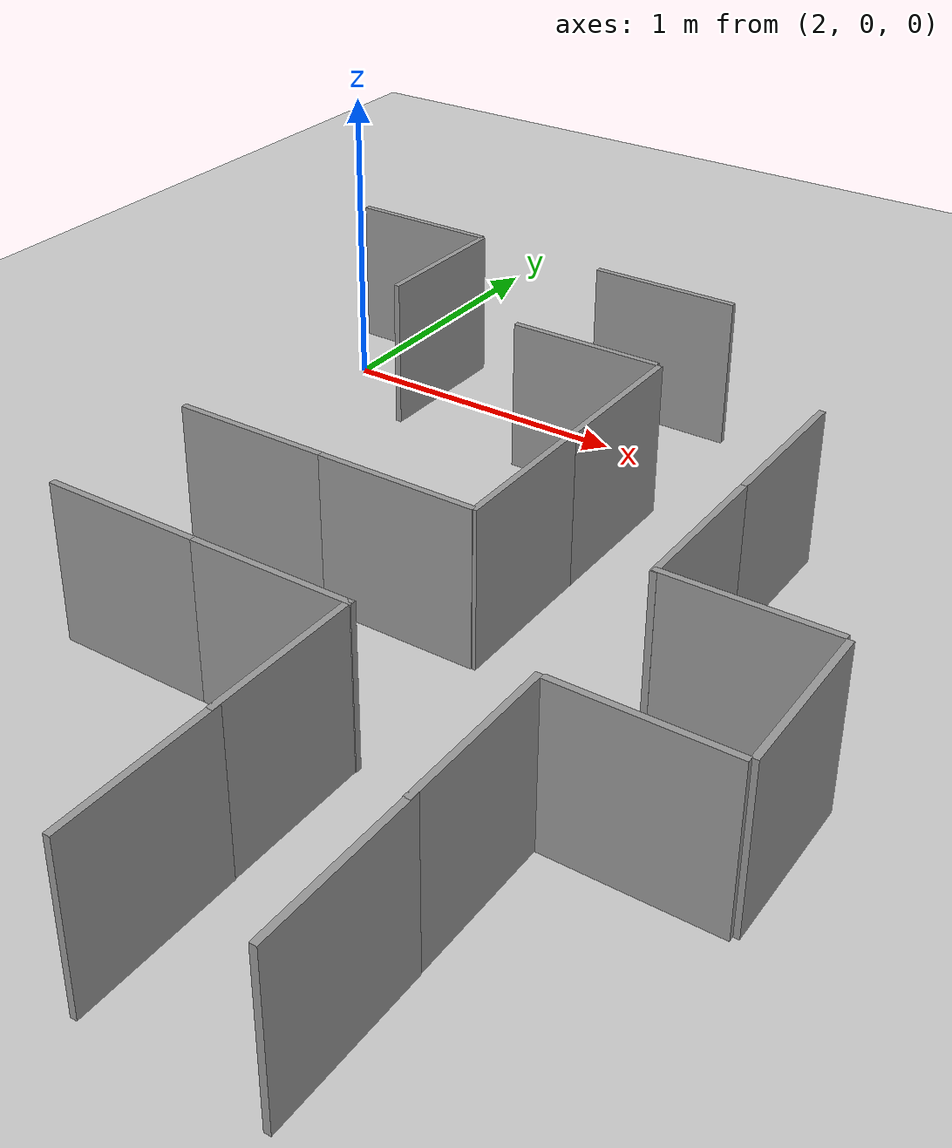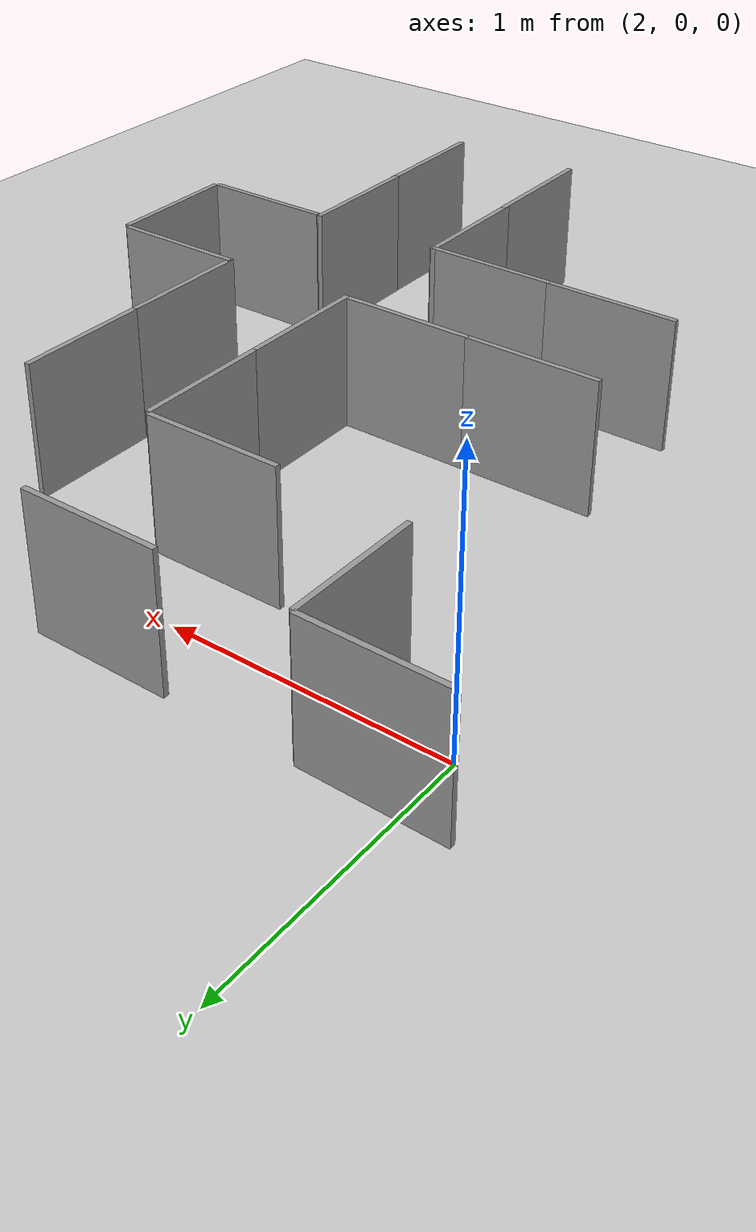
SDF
<sdf version="1.7">
 <world name="default">
  <model name="ground_plane">
   <static>1</static>
   <link name="link">
    <collision name="collision">
     <geometry><plane><normal>0 0 1</normal><size>100 100</size></plane></geometry>
     <surface><friction><ode><mu>100</mu><mu2>50</mu2></ode></friction></surface>
    </collision>
    <visual name="visual">
     <cast_shadows>0</cast_shadows>
     <geometry><plane><normal>0 0 1</normal><size>100 100</size></plane></geometry>
     <material>
      <script><uri>file://media/materials/scripts/gazebo.material</uri><name>Gazebo/Grey</name></script>
     </material>
    </visual>
   </link>
  </model>
  <model name="hsl_module_3">
   <link name="link_2_clone">
    <inertial>
     <mass>1</mass>
     <inertia><ixx>0.01</ixx><ixy>0</ixy><ixz>0</ixz><iyy>0.02</iyy><iyz>0</iyz><izz>0.01</izz></inertia>
    </inertial>
    <pose>0.212503 -0.126383 0 0 -0 0</pose>
    <visual name="visual">
     <geometry><box><size>0.5 0.02 0.5</size></box></geometry>
     <material>
      <lighting>1</lighting>
      <script><uri>file://media/materials/scripts/gazebo.material</uri><name>Gazebo/Grey</name></script>
      <shader type="pixel"><normal_map>__default__</normal_map></shader>
      <ambient>0.3 0.3 0.3 1</ambient>
      <diffuse>0.7 0.7 0.7 1</diffuse>
      <specular>0.01 0.01 0.01 1</specular>
      <emissive>0 0 0 1</emissive>
     </material>
    </visual>
    <collision name="collision">
     <geometry><box><size>0.5 0.02 0.5</size></box></geometry>
     <surface>
      <friction>
       <ode><mu>1</mu><mu2>1</mu2><fdir1>0 0 0</fdir1><slip1>0</slip1><slip2>0</slip2></ode>
       <torsional>
        <coefficient>1</coefficient>
        <patch_radius>0</patch_radius>
        <surface_radius>0</surface_radius>
        <use_patch_radius>1</use_patch_radius>
        <ode><slip>0</slip></ode>
       </torsional>
      </friction>
      <bounce><restitution_coefficient>0</restitution_coefficient><threshold>1e+06</threshold></bounce>
      <contact>
       <collide_without_contact>0</collide_without_contact>
       <collide_without_contact_bitmask>1</collide_without_contact_bitmask>
       <collide_bitmask>1</collide_bitmask>
       <ode>
        <soft_cfm>0</soft_cfm>
        <soft_erp>0.2</soft_erp>
        <kp>1e+13</kp>
        <kd>1</kd>
        <max_vel>0.01</max_vel>
        <min_depth>0</min_depth>
       </ode>
       <bullet>
        <split_impulse>1</split_impulse>
        <split_impulse_penetration_threshold>-0.01</split_impulse_penetration_threshold>
        <soft_cfm>0</soft_cfm>
        <soft_erp>0.2</soft_erp>
        <kp>1e+13</kp>
        <kd>1</kd>
       </bullet>
      </contact>
     </surface>
    </collision>
   </link>
   <link name="link_2_clone_clone">
    <inertial>
     <mass>1</mass>
     <inertia><ixx>0.01</ixx><ixy>0</ixy><ixz>0</ixz><iyy>0.02</iyy><iyz>0</iyz><izz>0.01</izz></inertia>
    </inertial>
    <pose>-0.040799 0.125917 0 0 -0 1.57298</pose>
    <visual name="visual">
     <geometry><box><size>0.5 0.02 0.5</size></box></geometry>
     <material>
      <lighting>1</lighting>
      <script><uri>file://media/materials/scripts/gazebo.material</uri><name>Gazebo/Grey</name></script>
      <shader type="pixel"><normal_map>__default__</normal_map></shader>
      <ambient>0.3 0.3 0.3 1</ambient>
      <diffuse>0.7 0.7 0.7 1</diffuse>
      <specular>0.01 0.01 0.01 1</specular>
      <emissive>0 0 0 1</emissive>
     </material>
    </visual>
    <collision name="collision">
     <geometry><box><size>0.5 0.02 0.5</size></box></geometry>
     <surface>
      <friction>
       <ode><mu>1</mu><mu2>1</mu2><fdir1>0 0 0</fdir1><slip1>0</slip1><slip2>0</slip2></ode>
       <torsional>
        <coefficient>1</coefficient>
        <patch_radius>0</patch_radius>
        <surface_radius>0</surface_radius>
        <use_patch_radius>1</use_patch_radius>
        <ode><slip>0</slip></ode>
       </torsional>
      </friction>
      <bounce><restitution_coefficient>0</restitution_coefficient><threshold>1e+06</threshold></bounce>
      <contact>
       <collide_without_contact>0</collide_without_contact>
       <collide_without_contact_bitmask>1</collide_without_contact_bitmask>
       <collide_bitmask>1</collide_bitmask>
       <ode>
        <soft_cfm>0</soft_cfm>
        <soft_erp>0.2</soft_erp>
        <kp>1e+13</kp>
        <kd>1</kd>
        <max_vel>0.01</max_vel>
        <min_depth>0</min_depth>
       </ode>
       <bullet>
        <split_impulse>1</split_impulse>
        <split_impulse_penetration_threshold>-0.01</split_impulse_penetration_threshold>
        <soft_cfm>0</soft_cfm>
        <soft_erp>0.2</soft_erp>
        <kp>1e+13</kp>
        <kd>1</kd>
       </bullet>
      </contact>
     </surface>
    </collision>
   </link>
   <static>0</static>
   <pose>2.29336 0.124927 0.255067 0 -0 3.13436</pose>
  </model>
  <model name="hsl_module_2_clone_clone_clone_0">
   <link name="link_2_clone">
    <inertial>
     <mass>1</mass>
     <inertia><ixx>0.01</ixx><ixy>0</ixy><ixz>0</ixz><iyy>0.02</iyy><iyz>0</iyz><izz>0.01</izz></inertia>
    </inertial>
    <pose>-0.318213 -0.417987 0.25 0 -0 0</pose>
    <visual name="visual">
     <geometry><box><size>0.5 0.02 0.5</size></box></geometry>
     <material>
      <lighting>1</lighting>
      <script><uri>file://media/materials/scripts/gazebo.material</uri><name>Gazebo/Grey</name></script>
      <shader type="pixel"><normal_map>__default__</normal_map></shader>
      <ambient>0.3 0.3 0.3 1</ambient>
      <diffuse>0.7 0.7 0.7 1</diffuse>
      <specular>0.01 0.01 0.01 1</specular>
      <emissive>0 0 0 1</emissive>
     </material>
    </visual>
    <collision name="collision">
     <geometry><box><size>0.5 0.02 0.5</size></box></geometry>
     <surface>
      <friction>
       <ode><mu>1</mu><mu2>1</mu2><fdir1>0 0 0</fdir1><slip1>0</slip1><slip2>0</slip2></ode>
       <torsional>
        <coefficient>1</coefficient>
        <patch_radius>0</patch_radius>
        <surface_radius>0</surface_radius>
        <use_patch_radius>1</use_patch_radius>
        <ode><slip>0</slip></ode>
       </torsional>
      </friction>
      <bounce><restitution_coefficient>0</restitution_coefficient><threshold>1e+06</threshold></bounce>
      <contact>
       <collide_without_contact>0</collide_without_contact>
       <collide_without_contact_bitmask>1</collide_without_contact_bitmask>
       <collide_bitmask>1</collide_bitmask>
       <ode>
        <soft_cfm>0</soft_cfm>
        <soft_erp>0.2</soft_erp>
        <kp>1e+13</kp>
        <kd>1</kd>
        <max_vel>0.01</max_vel>
        <min_depth>0</min_depth>
       </ode>
       <bullet>
        <split_impulse>1</split_impulse>
        <split_impulse_penetration_threshold>-0.01</split_impulse_penetration_threshold>
        <soft_cfm>0</soft_cfm>
        <soft_erp>0.2</soft_erp>
        <kp>1e+13</kp>
        <kd>1</kd>
       </bullet>
      </contact>
     </surface>
    </collision>
   </link>
   <link name="link_2_clone_clone_0">
    <inertial>
     <mass>1</mass>
     <inertia><ixx>0.01</ixx><ixy>0</ixy><ixz>0</ixz><iyy>0.02</iyy><iyz>0</iyz><izz>0.01</izz></inertia>
    </inertial>
    <pose>-0.324105 0.095839 0.25 0 -0 0</pose>
    <visual name="visual">
     <geometry><box><size>0.5 0.02 0.5</size></box></geometry>
     <material>
      <lighting>1</lighting>
      <script><uri>file://media/materials/scripts/gazebo.material</uri><name>Gazebo/Grey</name></script>
      <shader type="pixel"><normal_map>__default__</normal_map></shader>
      <ambient>0.3 0.3 0.3 1</ambient>
      <diffuse>0.7 0.7 0.7 1</diffuse>
      <specular>0.01 0.01 0.01 1</specular>
      <emissive>0 0 0 1</emissive>
     </material>
    </visual>
    <collision name="collision">
     <geometry><box><size>0.5 0.02 0.5</size></box></geometry>
     <surface>
      <friction>
       <ode><mu>1</mu><mu2>1</mu2><fdir1>0 0 0</fdir1><slip1>0</slip1><slip2>0</slip2></ode>
       <torsional>
        <coefficient>1</coefficient>
        <patch_radius>0</patch_radius>
        <surface_radius>0</surface_radius>
        <use_patch_radius>1</use_patch_radius>
        <ode><slip>0</slip></ode>
       </torsional>
      </friction>
      <bounce><restitution_coefficient>0</restitution_coefficient><threshold>1e+06</threshold></bounce>
      <contact>
       <collide_without_contact>0</collide_without_contact>
       <collide_without_contact_bitmask>1</collide_without_contact_bitmask>
       <collide_bitmask>1</collide_bitmask>
       <ode>
        <soft_cfm>0</soft_cfm>
        <soft_erp>0.2</soft_erp>
        <kp>1e+13</kp>
        <kd>1</kd>
        <max_vel>0.01</max_vel>
        <min_depth>0</min_depth>
       </ode>
       <bullet>
        <split_impulse>1</split_impulse>
        <split_impulse_penetration_threshold>-0.01</split_impulse_penetration_threshold>
        <soft_cfm>0</soft_cfm>
        <soft_erp>0.2</soft_erp>
        <kp>1e+13</kp>
        <kd>1</kd>
       </bullet>
      </contact>
     </surface>
    </collision>
   </link>
   <static>0</static>
   <pose>2.89824 -1.35293 -0 0 -0 0</pose>
  </model>
  <model name="hsl_module_2_clone_clone_0">
   <link name="link_2_clone">
    <inertial>
     <mass>1</mass>
     <inertia><ixx>0.01</ixx><ixy>0</ixy><ixz>0</ixz><iyy>0.02</iyy><iyz>0</iyz><izz>0.01</izz></inertia>
    </inertial>
    <pose>-0.318213 -0.417987 0.25 0 -0 0</pose>
    <visual name="visual">
     <geometry><box><size>0.5 0.02 0.5</size></box></geometry>
     <material>
      <lighting>1</lighting>
      <script><uri>file://media/materials/scripts/gazebo.material</uri><name>Gazebo/Grey</name></script>
      <shader type="pixel"><normal_map>__default__</normal_map></shader>
      <ambient>0.3 0.3 0.3 1</ambient>
      <diffuse>0.7 0.7 0.7 1</diffuse>
      <specular>0.01 0.01 0.01 1</specular>
      <emissive>0 0 0 1</emissive>
     </material>
    </visual>
    <collision name="collision">
     <geometry><box><size>0.5 0.02 0.5</size></box></geometry>
     <surface>
      <friction>
       <ode><mu>1</mu><mu2>1</mu2><fdir1>0 0 0</fdir1><slip1>0</slip1><slip2>0</slip2></ode>
       <torsional>
        <coefficient>1</coefficient>
        <patch_radius>0</patch_radius>
        <surface_radius>0</surface_radius>
        <use_patch_radius>1</use_patch_radius>
        <ode><slip>0</slip></ode>
       </torsional>
      </friction>
      <bounce><restitution_coefficient>0</restitution_coefficient><threshold>1e+06</threshold></bounce>
      <contact>
       <collide_without_contact>0</collide_without_contact>
       <collide_without_contact_bitmask>1</collide_without_contact_bitmask>
       <collide_bitmask>1</collide_bitmask>
       <ode>
        <soft_cfm>0</soft_cfm>
        <soft_erp>0.2</soft_erp>
        <kp>1e+13</kp>
        <kd>1</kd>
        <max_vel>0.01</max_vel>
        <min_depth>0</min_depth>
       </ode>
       <bullet>
        <split_impulse>1</split_impulse>
        <split_impulse_penetration_threshold>-0.01</split_impulse_penetration_threshold>
        <soft_cfm>0</soft_cfm>
        <soft_erp>0.2</soft_erp>
        <kp>1e+13</kp>
        <kd>1</kd>
       </bullet>
      </contact>
     </surface>
    </collision>
   </link>
   <link name="link_2_clone_clone_0">
    <inertial>
     <mass>1</mass>
     <inertia><ixx>0.01</ixx><ixy>0</ixy><ixz>0</ixz><iyy>0.02</iyy><iyz>0</iyz><izz>0.01</izz></inertia>
    </inertial>
    <pose>-0.324105 0.095839 0.25 0 -0 0</pose>
    <visual name="visual">
     <geometry><box><size>0.5 0.02 0.5</size></box></geometry>
     <material>
      <lighting>1</lighting>
      <script><uri>file://media/materials/scripts/gazebo.material</uri><name>Gazebo/Grey</name></script>
      <shader type="pixel"><normal_map>__default__</normal_map></shader>
      <ambient>0.3 0.3 0.3 1</ambient>
      <diffuse>0.7 0.7 0.7 1</diffuse>
      <specular>0.01 0.01 0.01 1</specular>
      <emissive>0 0 0 1</emissive>
     </material>
    </visual>
    <collision name="collision">
     <geometry><box><size>0.5 0.02 0.5</size></box></geometry>
     <surface>
      <friction>
       <ode><mu>1</mu><mu2>1</mu2><fdir1>0 0 0</fdir1><slip1>0</slip1><slip2>0</slip2></ode>
       <torsional>
        <coefficient>1</coefficient>
        <patch_radius>0</patch_radius>
        <surface_radius>0</surface_radius>
        <use_patch_radius>1</use_patch_radius>
        <ode><slip>0</slip></ode>
       </torsional>
      </friction>
      <bounce><restitution_coefficient>0</restitution_coefficient><threshold>1e+06</threshold></bounce>
      <contact>
       <collide_without_contact>0</collide_without_contact>
       <collide_without_contact_bitmask>1</collide_without_contact_bitmask>
       <collide_bitmask>1</collide_bitmask>
       <ode>
        <soft_cfm>0</soft_cfm>
        <soft_erp>0.2</soft_erp>
        <kp>1e+13</kp>
        <kd>1</kd>
        <max_vel>0.01</max_vel>
        <min_depth>0</min_depth>
       </ode>
       <bullet>
        <split_impulse>1</split_impulse>
        <split_impulse_penetration_threshold>-0.01</split_impulse_penetration_threshold>
        <soft_cfm>0</soft_cfm>
        <soft_erp>0.2</soft_erp>
        <kp>1e+13</kp>
        <kd>1</kd>
       </bullet>
      </contact>
     </surface>
    </collision>
   </link>
   <static>0</static>
   <pose>3.38996 -1.35303 0 0 -0 0</pose>
  </model>
  <model name="hsl_module_2_0_clone_clone">
   <link name="link_2_clone">
    <inertial>
     <mass>1</mass>
     <inertia><ixx>0.01</ixx><ixy>0</ixy><ixz>0</ixz><iyy>0.02</iyy><iyz>0</iyz><izz>0.01</izz></inertia>
    </inertial>
    <pose>-0.318213 -0.417987 0.25 0 -0 0</pose>
    <visual name="visual">
     <geometry><box><size>0.5 0.02 0.5</size></box></geometry>
     <material>
      <lighting>1</lighting>
      <script><uri>file://media/materials/scripts/gazebo.material</uri><name>Gazebo/Grey</name></script>
      <shader type="pixel"><normal_map>__default__</normal_map></shader>
      <ambient>0.3 0.3 0.3 1</ambient>
      <diffuse>0.7 0.7 0.7 1</diffuse>
      <specular>0.01 0.01 0.01 1</specular>
      <emissive>0 0 0 1</emissive>
     </material>
    </visual>
    <collision name="collision">
     <geometry><box><size>0.5 0.02 0.5</size></box></geometry>
     <surface>
      <friction>
       <ode><mu>1</mu><mu2>1</mu2><fdir1>0 0 0</fdir1><slip1>0</slip1><slip2>0</slip2></ode>
       <torsional>
        <coefficient>1</coefficient>
        <patch_radius>0</patch_radius>
        <surface_radius>0</surface_radius>
        <use_patch_radius>1</use_patch_radius>
        <ode><slip>0</slip></ode>
       </torsional>
      </friction>
      <bounce><restitution_coefficient>0</restitution_coefficient><threshold>1e+06</threshold></bounce>
      <contact>
       <collide_without_contact>0</collide_without_contact>
       <collide_without_contact_bitmask>1</collide_without_contact_bitmask>
       <collide_bitmask>1</collide_bitmask>
       <ode>
        <soft_cfm>0</soft_cfm>
        <soft_erp>0.2</soft_erp>
        <kp>1e+13</kp>
        <kd>1</kd>
        <max_vel>0.01</max_vel>
        <min_depth>0</min_depth>
       </ode>
       <bullet>
        <split_impulse>1</split_impulse>
        <split_impulse_penetration_threshold>-0.01</split_impulse_penetration_threshold>
        <soft_cfm>0</soft_cfm>
        <soft_erp>0.2</soft_erp>
        <kp>1e+13</kp>
        <kd>1</kd>
       </bullet>
      </contact>
     </surface>
    </collision>
   </link>
   <link name="link_2_clone_clone_0">
    <inertial>
     <mass>1</mass>
     <inertia><ixx>0.01</ixx><ixy>0</ixy><ixz>0</ixz><iyy>0.02</iyy><iyz>0</iyz><izz>0.01</izz></inertia>
    </inertial>
    <pose>-0.324105 0.095839 0.25 0 -0 0</pose>
    <visual name="visual">
     <geometry><box><size>0.5 0.02 0.5</size></box></geometry>
     <material>
      <lighting>1</lighting>
      <script><uri>file://media/materials/scripts/gazebo.material</uri><name>Gazebo/Grey</name></script>
      <shader type="pixel"><normal_map>__default__</normal_map></shader>
      <ambient>0.3 0.3 0.3 1</ambient>
      <diffuse>0.7 0.7 0.7 1</diffuse>
      <specular>0.01 0.01 0.01 1</specular>
      <emissive>0 0 0 1</emissive>
     </material>
    </visual>
    <collision name="collision">
     <geometry><box><size>0.5 0.02 0.5</size></box></geometry>
     <surface>
      <friction>
       <ode><mu>1</mu><mu2>1</mu2><fdir1>0 0 0</fdir1><slip1>0</slip1><slip2>0</slip2></ode>
       <torsional>
        <coefficient>1</coefficient>
        <patch_radius>0</patch_radius>
        <surface_radius>0</surface_radius>
        <use_patch_radius>1</use_patch_radius>
        <ode><slip>0</slip></ode>
       </torsional>
      </friction>
      <bounce><restitution_coefficient>0</restitution_coefficient><threshold>1e+06</threshold></bounce>
      <contact>
       <collide_without_contact>0</collide_without_contact>
       <collide_without_contact_bitmask>1</collide_without_contact_bitmask>
       <collide_bitmask>1</collide_bitmask>
       <ode>
        <soft_cfm>0</soft_cfm>
        <soft_erp>0.2</soft_erp>
        <kp>1e+13</kp>
        <kd>1</kd>
        <max_vel>0.01</max_vel>
        <min_depth>0</min_depth>
       </ode>
       <bullet>
        <split_impulse>1</split_impulse>
        <split_impulse_penetration_threshold>-0.01</split_impulse_penetration_threshold>
        <soft_cfm>0</soft_cfm>
        <soft_erp>0.2</soft_erp>
        <kp>1e+13</kp>
        <kd>1</kd>
       </bullet>
      </contact>
     </surface>
    </collision>
   </link>
   <static>0</static>
   <pose>3.73629 -1.33051 0 0 0 -1.56536</pose>
  </model>
  <model name="hsl_module_2_0_clone_clone_0">
   <link name="link_2_clone">
    <inertial>
     <mass>1</mass>
     <inertia><ixx>0.01</ixx><ixy>0</ixy><ixz>0</ixz><iyy>0.02</iyy><iyz>0</iyz><izz>0.01</izz></inertia>
    </inertial>
    <pose>-0.318213 -0.417987 0.25 0 -0 0</pose>
    <visual name="visual">
     <geometry><box><size>0.5 0.02 0.5</size></box></geometry>
     <material>
      <lighting>1</lighting>
      <script><uri>file://media/materials/scripts/gazebo.material</uri><name>Gazebo/Grey</name></script>
      <shader type="pixel"><normal_map>__default__</normal_map></shader>
      <ambient>0.3 0.3 0.3 1</ambient>
      <diffuse>0.7 0.7 0.7 1</diffuse>
      <specular>0.01 0.01 0.01 1</specular>
      <emissive>0 0 0 1</emissive>
     </material>
    </visual>
    <collision name="collision">
     <geometry><box><size>0.5 0.02 0.5</size></box></geometry>
     <surface>
      <friction>
       <ode><mu>1</mu><mu2>1</mu2><fdir1>0 0 0</fdir1><slip1>0</slip1><slip2>0</slip2></ode>
       <torsional>
        <coefficient>1</coefficient>
        <patch_radius>0</patch_radius>
        <surface_radius>0</surface_radius>
        <use_patch_radius>1</use_patch_radius>
        <ode><slip>0</slip></ode>
       </torsional>
      </friction>
      <bounce><restitution_coefficient>0</restitution_coefficient><threshold>1e+06</threshold></bounce>
      <contact>
       <collide_without_contact>0</collide_without_contact>
       <collide_without_contact_bitmask>1</collide_without_contact_bitmask>
       <collide_bitmask>1</collide_bitmask>
       <ode>
        <soft_cfm>0</soft_cfm>
        <soft_erp>0.2</soft_erp>
        <kp>1e+13</kp>
        <kd>1</kd>
        <max_vel>0.01</max_vel>
        <min_depth>0</min_depth>
       </ode>
       <bullet>
        <split_impulse>1</split_impulse>
        <split_impulse_penetration_threshold>-0.01</split_impulse_penetration_threshold>
        <soft_cfm>0</soft_cfm>
        <soft_erp>0.2</soft_erp>
        <kp>1e+13</kp>
        <kd>1</kd>
       </bullet>
      </contact>
     </surface>
    </collision>
   </link>
   <link name="link_2_clone_clone_0">
    <inertial>
     <mass>1</mass>
     <inertia><ixx>0.01</ixx><ixy>0</ixy><ixz>0</ixz><iyy>0.02</iyy><iyz>0</iyz><izz>0.01</izz></inertia>
    </inertial>
    <pose>-0.324105 0.095839 0.25 0 -0 0</pose>
    <visual name="visual">
     <geometry><box><size>0.5 0.02 0.5</size></box></geometry>
     <material>
      <lighting>1</lighting>
      <script><uri>file://media/materials/scripts/gazebo.material</uri><name>Gazebo/Grey</name></script>
      <shader type="pixel"><normal_map>__default__</normal_map></shader>
      <ambient>0.3 0.3 0.3 1</ambient>
      <diffuse>0.7 0.7 0.7 1</diffuse>
      <specular>0.01 0.01 0.01 1</specular>
      <emissive>0 0 0 1</emissive>
     </material>
    </visual>
    <collision name="collision">
     <geometry><box><size>0.5 0.02 0.5</size></box></geometry>
     <surface>
      <friction>
       <ode><mu>1</mu><mu2>1</mu2><fdir1>0 0 0</fdir1><slip1>0</slip1><slip2>0</slip2></ode>
       <torsional>
        <coefficient>1</coefficient>
        <patch_radius>0</patch_radius>
        <surface_radius>0</surface_radius>
        <use_patch_radius>1</use_patch_radius>
        <ode><slip>0</slip></ode>
       </torsional>
      </friction>
      <bounce><restitution_coefficient>0</restitution_coefficient><threshold>1e+06</threshold></bounce>
      <contact>
       <collide_without_contact>0</collide_without_contact>
       <collide_without_contact_bitmask>1</collide_without_contact_bitmask>
       <collide_bitmask>1</collide_bitmask>
       <ode>
        <soft_cfm>0</soft_cfm>
        <soft_erp>0.2</soft_erp>
        <kp>1e+13</kp>
        <kd>1</kd>
        <max_vel>0.01</max_vel>
        <min_depth>0</min_depth>
       </ode>
       <bullet>
        <split_impulse>1</split_impulse>
        <split_impulse_penetration_threshold>-0.01</split_impulse_penetration_threshold>
        <soft_cfm>0</soft_cfm>
        <soft_erp>0.2</soft_erp>
        <kp>1e+13</kp>
        <kd>1</kd>
       </bullet>
      </contact>
     </surface>
    </collision>
   </link>
   <static>0</static>
   <pose>3.72974 -2.32681 0 0 0 -1.56536</pose>
  </model>
  <model name="hsl_module_1_clone_clone">
   <link name="link_2_clone">
    <inertial>
     <mass>1</mass>
     <inertia><ixx>0.01</ixx><ixy>0</ixy><ixz>0</ixz><iyy>0.02</iyy><iyz>0</iyz><izz>0.01</izz></inertia>
    </inertial>
    <pose>0.088798 -0.257146 0 0 -0 0</pose>
    <visual name="visual">
     <geometry><box><size>0.5 0.02 0.5</size></box></geometry>
     <material>
      <lighting>1</lighting>
      <script><uri>file://media/materials/scripts/gazebo.material</uri><name>Gazebo/Grey</name></script>
      <shader type="pixel"><normal_map>__default__</normal_map></shader>
      <ambient>0.3 0.3 0.3 1</ambient>
      <diffuse>0.7 0.7 0.7 1</diffuse>
      <specular>0.01 0.01 0.01 1</specular>
      <emissive>0 0 0 1</emissive>
     </material>
    </visual>
    <collision name="collision">
     <geometry><box><size>0.5 0.02 0.5</size></box></geometry>
     <surface>
      <friction>
       <ode><mu>1</mu><mu2>1</mu2><fdir1>0 0 0</fdir1><slip1>0</slip1><slip2>0</slip2></ode>
       <torsional>
        <coefficient>1</coefficient>
        <patch_radius>0</patch_radius>
        <surface_radius>0</surface_radius>
        <use_patch_radius>1</use_patch_radius>
        <ode><slip>0</slip></ode>
       </torsional>
      </friction>
      <bounce><restitution_coefficient>0</restitution_coefficient><threshold>1e+06</threshold></bounce>
      <contact>
       <collide_without_contact>0</collide_without_contact>
       <collide_without_contact_bitmask>1</collide_without_contact_bitmask>
       <collide_bitmask>1</collide_bitmask>
       <ode>
        <soft_cfm>0</soft_cfm>
        <soft_erp>0.2</soft_erp>
        <kp>1e+13</kp>
        <kd>1</kd>
        <max_vel>0.01</max_vel>
        <min_depth>0</min_depth>
       </ode>
       <bullet>
        <split_impulse>1</split_impulse>
        <split_impulse_penetration_threshold>-0.01</split_impulse_penetration_threshold>
        <soft_cfm>0</soft_cfm>
        <soft_erp>0.2</soft_erp>
        <kp>1e+13</kp>
        <kd>1</kd>
       </bullet>
      </contact>
     </surface>
    </collision>
   </link>
   <link name="link_2_clone_clone">
    <inertial>
     <mass>1</mass>
     <inertia><ixx>0.01</ixx><ixy>0</ixy><ixz>0</ixz><iyy>0.02</iyy><iyz>0</iyz><izz>0.01</izz></inertia>
    </inertial>
    <pose>-0.171704 0.000465 0 0 -0 1.57697</pose>
    <visual name="visual">
     <geometry><box><size>0.5 0.02 0.5</size></box></geometry>
     <material>
      <lighting>1</lighting>
      <script><uri>file://media/materials/scripts/gazebo.material</uri><name>Gazebo/Grey</name></script>
      <shader type="pixel"><normal_map>__default__</normal_map></shader>
      <ambient>0.3 0.3 0.3 1</ambient>
      <diffuse>0.7 0.7 0.7 1</diffuse>
      <specular>0.01 0.01 0.01 1</specular>
      <emissive>0 0 0 1</emissive>
     </material>
    </visual>
    <collision name="collision">
     <geometry><box><size>0.5 0.02 0.5</size></box></geometry>
     <surface>
      <friction>
       <ode><mu>1</mu><mu2>1</mu2><fdir1>0 0 0</fdir1><slip1>0</slip1><slip2>0</slip2></ode>
       <torsional>
        <coefficient>1</coefficient>
        <patch_radius>0</patch_radius>
        <surface_radius>0</surface_radius>
        <use_patch_radius>1</use_patch_radius>
        <ode><slip>0</slip></ode>
       </torsional>
      </friction>
      <bounce><restitution_coefficient>0</restitution_coefficient><threshold>1e+06</threshold></bounce>
      <contact>
       <collide_without_contact>0</collide_without_contact>
       <collide_without_contact_bitmask>1</collide_without_contact_bitmask>
       <collide_bitmask>1</collide_bitmask>
       <ode>
        <soft_cfm>0</soft_cfm>
        <soft_erp>0.2</soft_erp>
        <kp>1e+13</kp>
        <kd>1</kd>
        <max_vel>0.01</max_vel>
        <min_depth>0</min_depth>
       </ode>
       <bullet>
        <split_impulse>1</split_impulse>
        <split_impulse_penetration_threshold>-0.01</split_impulse_penetration_threshold>
        <soft_cfm>0</soft_cfm>
        <soft_erp>0.2</soft_erp>
        <kp>1e+13</kp>
        <kd>1</kd>
       </bullet>
      </contact>
     </surface>
    </collision>
   </link>
   <link name="link_2_clone_clone_0">
    <inertial>
     <mass>1</mass>
     <inertia><ixx>0.01</ixx><ixy>0</ixy><ixz>0</ixz><iyy>0.02</iyy><iyz>0</iyz><izz>0.01</izz></inertia>
    </inertial>
    <pose>0.082906 0.256681 0 0 -0 0</pose>
    <visual name="visual">
     <geometry><box><size>0.5 0.02 0.5</size></box></geometry>
     <material>
      <lighting>1</lighting>
      <script><uri>file://media/materials/scripts/gazebo.material</uri><name>Gazebo/Grey</name></script>
      <shader type="pixel"><normal_map>__default__</normal_map></shader>
      <ambient>0.3 0.3 0.3 1</ambient>
      <diffuse>0.7 0.7 0.7 1</diffuse>
      <specular>0.01 0.01 0.01 1</specular>
      <emissive>0 0 0 1</emissive>
     </material>
    </visual>
    <collision name="collision">
     <geometry><box><size>0.5 0.02 0.5</size></box></geometry>
     <surface>
      <friction>
       <ode><mu>1</mu><mu2>1</mu2><fdir1>0 0 0</fdir1><slip1>0</slip1><slip2>0</slip2></ode>
       <torsional>
        <coefficient>1</coefficient>
        <patch_radius>0</patch_radius>
        <surface_radius>0</surface_radius>
        <use_patch_radius>1</use_patch_radius>
        <ode><slip>0</slip></ode>
       </torsional>
      </friction>
      <bounce><restitution_coefficient>0</restitution_coefficient><threshold>1e+06</threshold></bounce>
      <contact>
       <collide_without_contact>0</collide_without_contact>
       <collide_without_contact_bitmask>1</collide_without_contact_bitmask>
       <collide_bitmask>1</collide_bitmask>
       <ode>
        <soft_cfm>0</soft_cfm>
        <soft_erp>0.2</soft_erp>
        <kp>1e+13</kp>
        <kd>1</kd>
        <max_vel>0.01</max_vel>
        <min_depth>0</min_depth>
       </ode>
       <bullet>
        <split_impulse>1</split_impulse>
        <split_impulse_penetration_threshold>-0.01</split_impulse_penetration_threshold>
        <soft_cfm>0</soft_cfm>
        <soft_erp>0.2</soft_erp>
        <kp>1e+13</kp>
        <kd>1</kd>
       </bullet>
      </contact>
     </surface>
    </collision>
   </link>
   <static>0</static>
   <pose>4.1662 -1.50127 0.251418 0 0 -3.13785</pose>
  </model>
  <model name="hsl_module_2_0_clone_clone_clone">
   <link name="link_2_clone">
    <inertial>
     <mass>1</mass>
     <inertia><ixx>0.01</ixx><ixy>0</ixy><ixz>0</ixz><iyy>0.02</iyy><iyz>0</iyz><izz>0.01</izz></inertia>
    </inertial>
    <pose>-0.318213 -0.417987 0.25 0 -0 0</pose>
    <visual name="visual">
     <geometry><box><size>0.5 0.02 0.5</size></box></geometry>
     <material>
      <lighting>1</lighting>
      <script><uri>file://media/materials/scripts/gazebo.material</uri><name>Gazebo/Grey</name></script>
      <shader type="pixel"><normal_map>__default__</normal_map></shader>
      <ambient>0.3 0.3 0.3 1</ambient>
      <diffuse>0.7 0.7 0.7 1</diffuse>
      <specular>0.01 0.01 0.01 1</specular>
      <emissive>0 0 0 1</emissive>
     </material>
    </visual>
    <collision name="collision">
     <geometry><box><size>0.5 0.02 0.5</size></box></geometry>
     <surface>
      <friction>
       <ode><mu>1</mu><mu2>1</mu2><fdir1>0 0 0</fdir1><slip1>0</slip1><slip2>0</slip2></ode>
       <torsional>
        <coefficient>1</coefficient>
        <patch_radius>0</patch_radius>
        <surface_radius>0</surface_radius>
        <use_patch_radius>1</use_patch_radius>
        <ode><slip>0</slip></ode>
       </torsional>
      </friction>
      <bounce><restitution_coefficient>0</restitution_coefficient><threshold>1e+06</threshold></bounce>
      <contact>
       <collide_without_contact>0</collide_without_contact>
       <collide_without_contact_bitmask>1</collide_without_contact_bitmask>
       <collide_bitmask>1</collide_bitmask>
       <ode>
        <soft_cfm>0</soft_cfm>
        <soft_erp>0.2</soft_erp>
        <kp>1e+13</kp>
        <kd>1</kd>
        <max_vel>0.01</max_vel>
        <min_depth>0</min_depth>
       </ode>
       <bullet>
        <split_impulse>1</split_impulse>
        <split_impulse_penetration_threshold>-0.01</split_impulse_penetration_threshold>
        <soft_cfm>0</soft_cfm>
        <soft_erp>0.2</soft_erp>
        <kp>1e+13</kp>
        <kd>1</kd>
       </bullet>
      </contact>
     </surface>
    </collision>
   </link>
   <link name="link_2_clone_clone_0">
    <inertial>
     <mass>1</mass>
     <inertia><ixx>0.01</ixx><ixy>0</ixy><ixz>0</ixz><iyy>0.02</iyy><iyz>0</iyz><izz>0.01</izz></inertia>
    </inertial>
    <pose>-0.324105 0.095839 0.25 0 -0 0</pose>
    <visual name="visual">
     <geometry><box><size>0.5 0.02 0.5</size></box></geometry>
     <material>
      <lighting>1</lighting>
      <script><uri>file://media/materials/scripts/gazebo.material</uri><name>Gazebo/Grey</name></script>
      <shader type="pixel"><normal_map>__default__</normal_map></shader>
      <ambient>0.3 0.3 0.3 1</ambient>
      <diffuse>0.7 0.7 0.7 1</diffuse>
      <specular>0.01 0.01 0.01 1</specular>
      <emissive>0 0 0 1</emissive>
     </material>
    </visual>
    <collision name="collision">
     <geometry><box><size>0.5 0.02 0.5</size></box></geometry>
     <surface>
      <friction>
       <ode><mu>1</mu><mu2>1</mu2><fdir1>0 0 0</fdir1><slip1>0</slip1><slip2>0</slip2></ode>
       <torsional>
        <coefficient>1</coefficient>
        <patch_radius>0</patch_radius>
        <surface_radius>0</surface_radius>
        <use_patch_radius>1</use_patch_radius>
        <ode><slip>0</slip></ode>
       </torsional>
      </friction>
      <bounce><restitution_coefficient>0</restitution_coefficient><threshold>1e+06</threshold></bounce>
      <contact>
       <collide_without_contact>0</collide_without_contact>
       <collide_without_contact_bitmask>1</collide_without_contact_bitmask>
       <collide_bitmask>1</collide_bitmask>
       <ode>
        <soft_cfm>0</soft_cfm>
        <soft_erp>0.2</soft_erp>
        <kp>1e+13</kp>
        <kd>1</kd>
        <max_vel>0.01</max_vel>
        <min_depth>0</min_depth>
       </ode>
       <bullet>
        <split_impulse>1</split_impulse>
        <split_impulse_penetration_threshold>-0.01</split_impulse_penetration_threshold>
        <soft_cfm>0</soft_cfm>
        <soft_erp>0.2</soft_erp>
        <kp>1e+13</kp>
        <kd>1</kd>
       </bullet>
      </contact>
     </surface>
    </collision>
   </link>
   <static>0</static>
   <pose>3.73381 -0.837549 0 0 0 -1.56536</pose>
  </model>
  <model name="hsl_module_2_clone_clone_clone_1">
   <link name="link_2_clone">
    <inertial>
     <mass>1</mass>
     <inertia><ixx>0.01</ixx><ixy>0</ixy><ixz>0</ixz><iyy>0.02</iyy><iyz>0</iyz><izz>0.01</izz></inertia>
    </inertial>
    <pose>-0.318213 -0.417987 0.25 0 -0 0</pose>
    <visual name="visual">
     <geometry><box><size>0.5 0.02 0.5</size></box></geometry>
     <material>
      <lighting>1</lighting>
      <script><uri>file://media/materials/scripts/gazebo.material</uri><name>Gazebo/Grey</name></script>
      <shader type="pixel"><normal_map>__default__</normal_map></shader>
      <ambient>0.3 0.3 0.3 1</ambient>
      <diffuse>0.7 0.7 0.7 1</diffuse>
      <specular>0.01 0.01 0.01 1</specular>
      <emissive>0 0 0 1</emissive>
     </material>
    </visual>
    <collision name="collision">
     <geometry><box><size>0.5 0.02 0.5</size></box></geometry>
     <surface>
      <friction>
       <ode><mu>1</mu><mu2>1</mu2><fdir1>0 0 0</fdir1><slip1>0</slip1><slip2>0</slip2></ode>
       <torsional>
        <coefficient>1</coefficient>
        <patch_radius>0</patch_radius>
        <surface_radius>0</surface_radius>
        <use_patch_radius>1</use_patch_radius>
        <ode><slip>0</slip></ode>
       </torsional>
      </friction>
      <bounce><restitution_coefficient>0</restitution_coefficient><threshold>1e+06</threshold></bounce>
      <contact>
       <collide_without_contact>0</collide_without_contact>
       <collide_without_contact_bitmask>1</collide_without_contact_bitmask>
       <collide_bitmask>1</collide_bitmask>
       <ode>
        <soft_cfm>0</soft_cfm>
        <soft_erp>0.2</soft_erp>
        <kp>1e+13</kp>
        <kd>1</kd>
        <max_vel>0.01</max_vel>
        <min_depth>0</min_depth>
       </ode>
       <bullet>
        <split_impulse>1</split_impulse>
        <split_impulse_penetration_threshold>-0.01</split_impulse_penetration_threshold>
        <soft_cfm>0</soft_cfm>
        <soft_erp>0.2</soft_erp>
        <kp>1e+13</kp>
        <kd>1</kd>
       </bullet>
      </contact>
     </surface>
    </collision>
   </link>
   <link name="link_2_clone_clone_0">
    <inertial>
     <mass>1</mass>
     <inertia><ixx>0.01</ixx><ixy>0</ixy><ixz>0</ixz><iyy>0.02</iyy><iyz>0</iyz><izz>0.01</izz></inertia>
    </inertial>
    <pose>-0.324105 0.095839 0.25 0 -0 0</pose>
    <visual name="visual">
     <geometry><box><size>0.5 0.02 0.5</size></box></geometry>
     <material>
      <lighting>1</lighting>
      <script><uri>file://media/materials/scripts/gazebo.material</uri><name>Gazebo/Grey</name></script>
      <shader type="pixel"><normal_map>__default__</normal_map></shader>
      <ambient>0.3 0.3 0.3 1</ambient>
      <diffuse>0.7 0.7 0.7 1</diffuse>
      <specular>0.01 0.01 0.01 1</specular>
      <emissive>0 0 0 1</emissive>
     </material>
    </visual>
    <collision name="collision">
     <geometry><box><size>0.5 0.02 0.5</size></box></geometry>
     <surface>
      <friction>
       <ode><mu>1</mu><mu2>1</mu2><fdir1>0 0 0</fdir1><slip1>0</slip1><slip2>0</slip2></ode>
       <torsional>
        <coefficient>1</coefficient>
        <patch_radius>0</patch_radius>
        <surface_radius>0</surface_radius>
        <use_patch_radius>1</use_patch_radius>
        <ode><slip>0</slip></ode>
       </torsional>
      </friction>
      <bounce><restitution_coefficient>0</restitution_coefficient><threshold>1e+06</threshold></bounce>
      <contact>
       <collide_without_contact>0</collide_without_contact>
       <collide_without_contact_bitmask>1</collide_without_contact_bitmask>
       <collide_bitmask>1</collide_bitmask>
       <ode>
        <soft_cfm>0</soft_cfm>
        <soft_erp>0.2</soft_erp>
        <kp>1e+13</kp>
        <kd>1</kd>
        <max_vel>0.01</max_vel>
        <min_depth>0</min_depth>
       </ode>
       <bullet>
        <split_impulse>1</split_impulse>
        <split_impulse_penetration_threshold>-0.01</split_impulse_penetration_threshold>
        <soft_cfm>0</soft_cfm>
        <soft_erp>0.2</soft_erp>
        <kp>1e+13</kp>
        <kd>1</kd>
       </bullet>
      </contact>
     </surface>
    </collision>
   </link>
   <static>0</static>
   <pose>3.37133 0.152892 0 0 -0 0</pose>
  </model>
  <model name="hsl_module_2_0_clone_clone_0_clone">
   <link name="link_2_clone">
    <inertial>
     <mass>1</mass>
     <inertia><ixx>0.01</ixx><ixy>0</ixy><ixz>0</ixz><iyy>0.02</iyy><iyz>0</iyz><izz>0.01</izz></inertia>
    </inertial>
    <pose>-0.318213 -0.417987 0.25 0 -0 0</pose>
    <visual name="visual">
     <geometry><box><size>0.5 0.02 0.5</size></box></geometry>
     <material>
      <lighting>1</lighting>
      <script><uri>file://media/materials/scripts/gazebo.material</uri><name>Gazebo/Grey</name></script>
      <shader type="pixel"><normal_map>__default__</normal_map></shader>
      <ambient>0.3 0.3 0.3 1</ambient>
      <diffuse>0.7 0.7 0.7 1</diffuse>
      <specular>0.01 0.01 0.01 1</specular>
      <emissive>0 0 0 1</emissive>
     </material>
    </visual>
    <collision name="collision">
     <geometry><box><size>0.5 0.02 0.5</size></box></geometry>
     <surface>
      <friction>
       <ode><mu>1</mu><mu2>1</mu2><fdir1>0 0 0</fdir1><slip1>0</slip1><slip2>0</slip2></ode>
       <torsional>
        <coefficient>1</coefficient>
        <patch_radius>0</patch_radius>
        <surface_radius>0</surface_radius>
        <use_patch_radius>1</use_patch_radius>
        <ode><slip>0</slip></ode>
       </torsional>
      </friction>
      <bounce><restitution_coefficient>0</restitution_coefficient><threshold>1e+06</threshold></bounce>
      <contact>
       <collide_without_contact>0</collide_without_contact>
       <collide_without_contact_bitmask>1</collide_without_contact_bitmask>
       <collide_bitmask>1</collide_bitmask>
       <ode>
        <soft_cfm>0</soft_cfm>
        <soft_erp>0.2</soft_erp>
        <kp>1e+13</kp>
        <kd>1</kd>
        <max_vel>0.01</max_vel>
        <min_depth>0</min_depth>
       </ode>
       <bullet>
        <split_impulse>1</split_impulse>
        <split_impulse_penetration_threshold>-0.01</split_impulse_penetration_threshold>
        <soft_cfm>0</soft_cfm>
        <soft_erp>0.2</soft_erp>
        <kp>1e+13</kp>
        <kd>1</kd>
       </bullet>
      </contact>
     </surface>
    </collision>
   </link>
   <link name="link_2_clone_clone_0">
    <inertial>
     <mass>1</mass>
     <inertia><ixx>0.01</ixx><ixy>0</ixy><ixz>0</ixz><iyy>0.02</iyy><iyz>0</iyz><izz>0.01</izz></inertia>
    </inertial>
    <pose>-0.324105 0.095839 0.25 0 -0 0</pose>
    <visual name="visual">
     <geometry><box><size>0.5 0.02 0.5</size></box></geometry>
     <material>
      <lighting>1</lighting>
      <script><uri>file://media/materials/scripts/gazebo.material</uri><name>Gazebo/Grey</name></script>
      <shader type="pixel"><normal_map>__default__</normal_map></shader>
      <ambient>0.3 0.3 0.3 1</ambient>
      <diffuse>0.7 0.7 0.7 1</diffuse>
      <specular>0.01 0.01 0.01 1</specular>
      <emissive>0 0 0 1</emissive>
     </material>
    </visual>
    <collision name="collision">
     <geometry><box><size>0.5 0.02 0.5</size></box></geometry>
     <surface>
      <friction>
       <ode><mu>1</mu><mu2>1</mu2><fdir1>0 0 0</fdir1><slip1>0</slip1><slip2>0</slip2></ode>
       <torsional>
        <coefficient>1</coefficient>
        <patch_radius>0</patch_radius>
        <surface_radius>0</surface_radius>
        <use_patch_radius>1</use_patch_radius>
        <ode><slip>0</slip></ode>
       </torsional>
      </friction>
      <bounce><restitution_coefficient>0</restitution_coefficient><threshold>1e+06</threshold></bounce>
      <contact>
       <collide_without_contact>0</collide_without_contact>
       <collide_without_contact_bitmask>1</collide_without_contact_bitmask>
       <collide_bitmask>1</collide_bitmask>
       <ode>
        <soft_cfm>0</soft_cfm>
        <soft_erp>0.2</soft_erp>
        <kp>1e+13</kp>
        <kd>1</kd>
        <max_vel>0.01</max_vel>
        <min_depth>0</min_depth>
       </ode>
       <bullet>
        <split_impulse>1</split_impulse>
        <split_impulse_penetration_threshold>-0.01</split_impulse_penetration_threshold>
        <soft_cfm>0</soft_cfm>
        <soft_erp>0.2</soft_erp>
        <kp>1e+13</kp>
        <kd>1</kd>
       </bullet>
      </contact>
     </surface>
    </collision>
   </link>
   <static>0</static>
   <pose>3.73379 -2.79966 0 0 0 -1.56536</pose>
  </model>
 </world>
</sdf>
